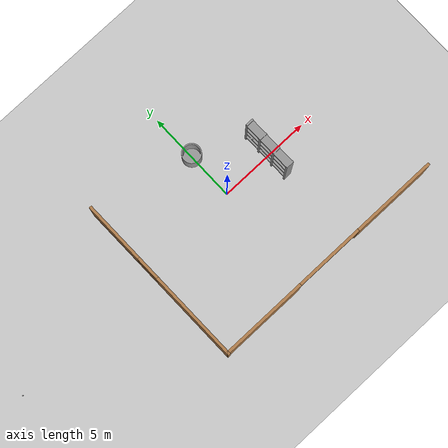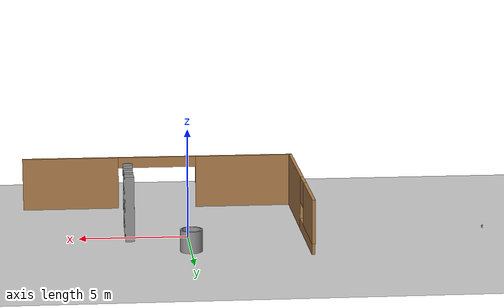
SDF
<sdf version="1.6">
 <world name="default">
  <light name="sun" type="directional">
   <pose>0 0 10 0 -0 0</pose>
   <diffuse>0.8 0.8 0.8 1</diffuse>
   <specular>0.1 0.1 0.1 1</specular>
   <attenuation>
    <range>1000</range>
    <constant>0.9</constant>
    <linear>0.01</linear>
    <quadratic>0.001</quadratic>
   </attenuation>
   <direction>-0.5 0.5 -1</direction>
  </light>
  <model name="ground_plane">
   <static>1</static>
   <link name="link">
    <collision name="collision">
     <geometry><plane><normal>0 0 1</normal><size>100 100</size></plane></geometry>
     <surface><friction><ode><mu>100</mu><mu2>50</mu2></ode></friction></surface>
    </collision>
    <visual name="visual">
     <cast_shadows>0</cast_shadows>
     <geometry><plane><normal>0 0 1</normal><size>100 100</size></plane></geometry>
     <material>
      <script><uri>file://media/materials/scripts/gazebo.material</uri><name>Gazebo/Grey</name></script>
     </material>
    </visual>
   </link>
  </model>
  <gravity>0 0 -9.8</gravity>
  <magnetic_field>6e-06 2.3e-05 -4.2e-05</magnetic_field>
  <atmosphere type="adiabatic"/>
  <physics name="default_physics" default="0" type="ode">
   <max_step_size>0.001</max_step_size>
   <real_time_factor>1</real_time_factor>
   <real_time_update_rate>1000</real_time_update_rate>
  </physics>
  <scene><ambient>0.4 0.4 0.4 1</ambient><background>0.7 0.7 0.7 1</background><shadows>1</shadows></scene>
  <spherical_coordinates>
   <surface_model>EARTH_WGS84</surface_model>
   <latitude_deg>0</latitude_deg>
   <longitude_deg>0</longitude_deg>
   <elevation>0</elevation>
   <heading_deg>0</heading_deg>
  </spherical_coordinates>
  <model name="kinematics_shelf">
   <static>1</static>
   <link name="link_0">
    <inertial>
     <mass>1</mass>
     <inertia>
      <ixx>0.166667</ixx>
      <ixy>0</ixy>
      <ixz>0</ixz>
      <iyy>0.166667</iyy>
      <iyz>0</iyz>
      <izz>0.166667</izz>
     </inertia>
    </inertial>
    <visual name="visual">
     <geometry><mesh><uri>model://kinematics_shelf/kinematics_shelf.dae</uri><scale>1 1 1</scale></mesh></geometry>
     <material>
      <lighting>1</lighting>
      <script><uri>file://media/materials/scripts/gazebo.material</uri><name>Gazebo/Grey</name></script>
      <ambient>0.3 0.3 0.3 1</ambient>
      <diffuse>0.7 0.7 0.7 1</diffuse>
      <specular>0.01 0.01 0.01 1</specular>
      <emissive>0 0 0 1</emissive>
     </material>
    </visual>
    <collision name="collision">
     <geometry><mesh><uri>model://kinematics_shelf/kinematics_shelf.dae</uri><scale>1 1 1</scale></mesh></geometry>
     <surface>
      <friction>
       <ode><mu>1</mu><mu2>1</mu2><fdir1>0 0 0</fdir1><slip1>0</slip1><slip2>0</slip2></ode>
       <torsional>
        <coefficient>1</coefficient>
        <patch_radius>0</patch_radius>
        <surface_radius>0</surface_radius>
        <use_patch_radius>1</use_patch_radius>
        <ode><slip>0</slip></ode>
       </torsional>
      </friction>
      <bounce><restitution_coefficient>0</restitution_coefficient><threshold>1e+06</threshold></bounce>
      <contact>
       <collide_without_contact>0</collide_without_contact>
       <collide_without_contact_bitmask>1</collide_without_contact_bitmask>
       <collide_bitmask>1</collide_bitmask>
       <ode>
        <soft_cfm>0</soft_cfm>
        <soft_erp>0.2</soft_erp>
        <kp>1e+13</kp>
        <kd>1</kd>
        <max_vel>0.01</max_vel>
        <min_depth>0</min_depth>
       </ode>
       <bullet>
        <split_impulse>1</split_impulse>
        <split_impulse_penetration_threshold>-0.01</split_impulse_penetration_threshold>
        <soft_cfm>0</soft_cfm>
        <soft_erp>0.2</soft_erp>
        <kp>1e+13</kp>
        <kd>1</kd>
       </bullet>
      </contact>
     </surface>
    </collision>
   </link>
   <static>0</static>
   <pose>2.7 0 1.036 0 -0 1.57</pose>
  </model>
  <model name="kinematics_bin">
   <link name="link_0">
    <inertial>
     <mass>1</mass>
     <inertia>
      <ixx>0.166667</ixx>
      <ixy>0</ixy>
      <ixz>0</ixz>
      <iyy>0.166667</iyy>
      <iyz>0</iyz>
      <izz>0.166667</izz>
     </inertia>
    </inertial>
    <visual name="visual">
     <geometry><mesh><uri>model://kinematics_bin/kinematics_bin.dae</uri><scale>1 1 1</scale></mesh></geometry>
     <material>
      <lighting>1</lighting>
      <script><uri>file://media/materials/scripts/gazebo.material</uri><name>Gazebo/Grey</name></script>
      <ambient>0.3 0.3 0.3 1</ambient>
      <diffuse>0.7 0.7 0.7 1</diffuse>
      <specular>0.01 0.01 0.01 1</specular>
      <emissive>0 0 0 1</emissive>
     </material>
    </visual>
    <collision name="collision">
     <geometry><mesh><uri>model://kinematics_bin/kinematics_bin.dae</uri><scale>1 1 1</scale></mesh></geometry>
     <surface>
      <friction>
       <ode><mu>1</mu><mu2>1</mu2><fdir1>0 0 0</fdir1><slip1>0</slip1><slip2>0</slip2></ode>
       <torsional>
        <coefficient>1</coefficient>
        <patch_radius>0</patch_radius>
        <surface_radius>0</surface_radius>
        <use_patch_radius>1</use_patch_radius>
        <ode><slip>0</slip></ode>
       </torsional>
      </friction>
      <bounce><restitution_coefficient>0</restitution_coefficient><threshold>1e+06</threshold></bounce>
      <contact>
       <collide_without_contact>0</collide_without_contact>
       <collide_without_contact_bitmask>1</collide_without_contact_bitmask>
       <collide_bitmask>1</collide_bitmask>
       <ode>
        <soft_cfm>0</soft_cfm>
        <soft_erp>0.2</soft_erp>
        <kp>1e+13</kp>
        <kd>1</kd>
        <max_vel>0.01</max_vel>
        <min_depth>0</min_depth>
       </ode>
       <bullet>
        <split_impulse>1</split_impulse>
        <split_impulse_penetration_threshold>-0.01</split_impulse_penetration_threshold>
        <soft_cfm>0</soft_cfm>
        <soft_erp>0.2</soft_erp>
        <kp>1e+13</kp>
        <kd>1</kd>
       </bullet>
      </contact>
     </surface>
    </collision>
   </link>
   <static>0</static>
   <pose>8.9e-05 2.5 0.015071 5e-06 1e-06 -0.006456</pose>
  </model>
  <model name="my_world">
   <pose>1.07939 -1.10429 0 0 -0 0</pose>
   <link name="Wall_1">
    <pose>0.017731 -4.62036 0 0 -0 3.14159</pose>
    <visual name="Wall_1_Visual_0">
     <pose>-4.20684 0 1.25 0 -0 0</pose>
     <geometry><box><size>4.58633 0.15 2.5</size></box></geometry>
     <material>
      <script><uri>file://media/materials/scripts/gazebo.material</uri><name>Gazebo/Wood</name></script>
      <ambient>1 1 1 1</ambient>
     </material>
     <meta><layer>0</layer></meta>
    </visual>
    <collision name="Wall_1_Collision_0">
     <geometry><box><size>4.58633 0.15 2.5</size></box></geometry>
     <pose>-4.20684 0 1.25 0 -0 0</pose>
    </collision>
    <visual name="Wall_1_Visual_1">
     <pose>4.15766 0 1.25 0 -0 0</pose>
     <geometry><box><size>4.68467 0.15 2.5</size></box></geometry>
     <material>
      <script><uri>file://media/materials/scripts/gazebo.material</uri><name>Gazebo/Wood</name></script>
      <ambient>1 1 1 1</ambient>
     </material>
     <meta><layer>0</layer></meta>
    </visual>
    <collision name="Wall_1_Collision_1">
     <geometry><box><size>4.68467 0.15 2.5</size></box></geometry>
     <pose>4.15766 0 1.25 0 -0 0</pose>
    </collision>
    <visual name="Wall_1_Visual_2">
     <pose>-0.049171 0 2.25 0 -0 0</pose>
     <geometry><box><size>3.729 0.15 0.5</size></box></geometry>
     <material>
      <script><uri>file://media/materials/scripts/gazebo.material</uri><name>Gazebo/Wood</name></script>
      <ambient>1 1 1 1</ambient>
     </material>
     <meta><layer>0</layer></meta>
    </visual>
    <collision name="Wall_1_Collision_2">
     <geometry><box><size>3.729 0.15 0.5</size></box></geometry>
     <pose>-0.049171 0 2.25 0 -0 0</pose>
    </collision>
   </link>
   <link name="Wall_2">
    <pose>-6.42486 0 0 0 -0 1.57458</pose>
    <visual name="Wall_2_Visual_0">
     <pose>-2.29675 0 1.25 0 -0 0</pose>
     <geometry><box><size>4.86763 0.15 2.5</size></box></geometry>
     <material>
      <script><uri>file://media/materials/scripts/gazebo.material</uri><name>Gazebo/Wood</name></script>
      <ambient>1 1 1 1</ambient>
     </material>
     <meta><layer>0</layer></meta>
    </visual>
    <collision name="Wall_2_Collision_0">
     <geometry><box><size>4.86763 0.15 2.5</size></box></geometry>
     <pose>-2.29675 0 1.25 0 -0 0</pose>
    </collision>
    <visual name="Wall_2_Visual_1">
     <pose>2.43382 0 0.25 0 -0 0</pose>
     <geometry><box><size>4.59351 0.15 0.5</size></box></geometry>
     <material>
      <script><uri>file://media/materials/scripts/gazebo.material</uri><name>Gazebo/Wood</name></script>
      <ambient>1 1 1 1</ambient>
     </material>
     <meta><layer>0</layer></meta>
    </visual>
    <collision name="Wall_2_Collision_1">
     <geometry><box><size>4.59351 0.15 0.5</size></box></geometry>
     <pose>2.43382 0 0.25 0 -0 0</pose>
    </collision>
    <visual name="Wall_2_Visual_2">
     <pose>3.06996 0 1.5 0 -0 0</pose>
     <geometry><box><size>3.32122 0.15 2</size></box></geometry>
     <material>
      <script><uri>file://media/materials/scripts/gazebo.material</uri><name>Gazebo/Wood</name></script>
      <ambient>1 1 1 1</ambient>
     </material>
     <meta><layer>0</layer></meta>
    </visual>
    <collision name="Wall_2_Collision_2">
     <geometry><box><size>3.32122 0.15 2</size></box></geometry>
     <pose>3.06996 0 1.5 0 -0 0</pose>
    </collision>
    <visual name="Wall_2_Visual_3">
     <pose>0.773206 0 1.9 0 -0 0</pose>
     <geometry><box><size>1.27228 0.15 1.2</size></box></geometry>
     <material>
      <script><uri>file://media/materials/scripts/gazebo.material</uri><name>Gazebo/Wood</name></script>
      <ambient>1 1 1 1</ambient>
     </material>
     <meta><layer>0</layer></meta>
    </visual>
    <collision name="Wall_2_Collision_3">
     <geometry><box><size>1.27228 0.15 1.2</size></box></geometry>
     <pose>0.773206 0 1.9 0 -0 0</pose>
    </collision>
   </link>
   <static>1</static>
  </model>
  <audio><device>default</device></audio>
  <model name="coke_can">
   <link name="link">
    <inertial>
     <pose>0 0 0.06 0 -0 0</pose>
     <mass>0.39</mass>
     <inertia>
      <ixx>0.00055575</ixx>
      <ixy>0</ixy>
      <ixz>0</ixz>
      <iyy>0.00055575</iyy>
      <iyz>0</iyz>
      <izz>0.0001755</izz>
     </inertia>
    </inertial>
    <collision name="collision">
     <pose>0.003937 0.004724 -0.18 0 -0 0</pose>
     <geometry><mesh><uri>model://coke_can/meshes/coke_can.dae</uri></mesh></geometry>
     <surface>
      <friction><ode><mu>1</mu><mu2>1</mu2></ode></friction>
      <contact><ode><kp>1e+07</kp><kd>1</kd><min_depth>0.001</min_depth><max_vel>0.1</max_vel></ode></contact>
     </surface>
    </collision>
    <visual name="visual">
     <pose>0.003937 0.004724 -0.18 0 -0 0</pose>
     <geometry><mesh><uri>model://coke_can/meshes/coke_can.dae</uri></mesh></geometry>
    </visual>
   </link>
   <pose>-13.772 -0.443633 -0.003472 -0.036723 0.008273 -0.000715</pose>
  </model>
  <model name="coke_can_0">
   <link name="link">
    <inertial>
     <pose>0 0 0.06 0 -0 0</pose>
     <mass>0.39</mass>
     <inertia>
      <ixx>0.00055575</ixx>
      <ixy>0</ixy>
      <ixz>0</ixz>
      <iyy>0.00055575</iyy>
      <iyz>0</iyz>
      <izz>0.0001755</izz>
     </inertia>
    </inertial>
    <collision name="collision">
     <pose>0.003937 0.004724 -0.18 0 -0 0</pose>
     <geometry><mesh><uri>model://coke_can/meshes/coke_can.dae</uri></mesh></geometry>
     <surface>
      <friction><ode><mu>1</mu><mu2>1</mu2></ode></friction>
      <contact><ode><kp>1e+07</kp><kd>1</kd><min_depth>0.001</min_depth><max_vel>0.1</max_vel></ode></contact>
     </surface>
    </collision>
    <visual name="visual">
     <pose>0.003937 0.004724 -0.18 0 -0 0</pose>
     <geometry><mesh><uri>model://coke_can/meshes/coke_can.dae</uri></mesh></geometry>
    </visual>
   </link>
   <pose>2.50009 0.899999 1.55219 -0.000528 -0.00975 -0.000287</pose>
  </model>
 </world>
</sdf>
